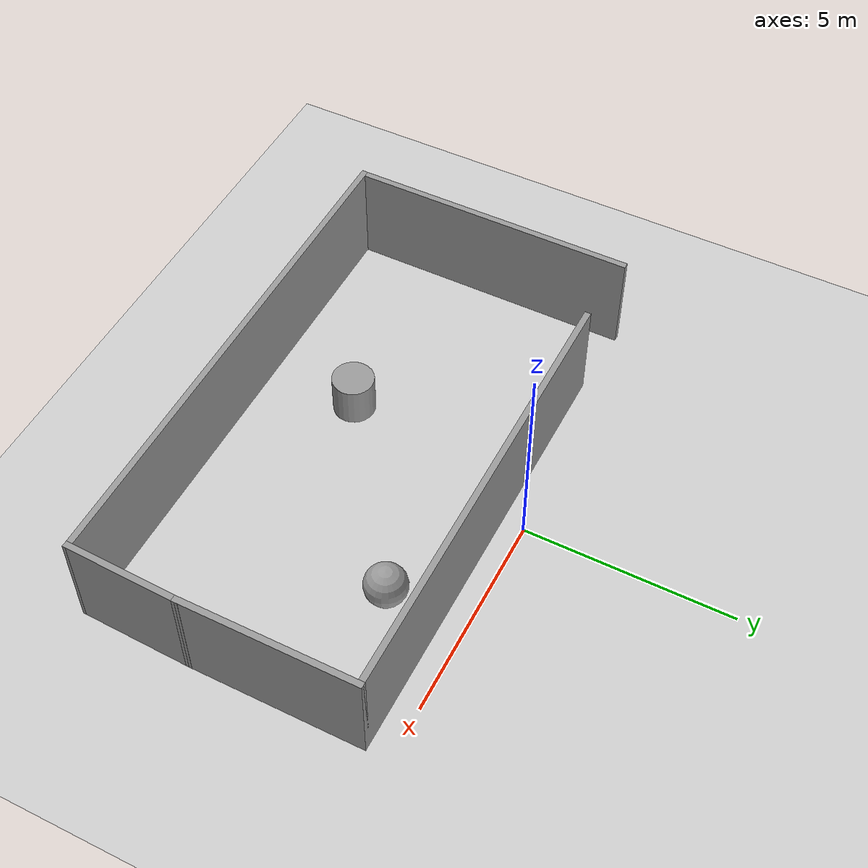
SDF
<sdf version="1.7">
 <world name="default">
  <light name="sun" type="directional">
   <pose>0 0 10 0 -0 0</pose>
   <diffuse>0.8 0.8 0.8 1</diffuse>
   <specular>0.2 0.2 0.2 1</specular>
   <attenuation>
    <range>1000</range>
    <constant>0.9</constant>
    <linear>0.01</linear>
    <quadratic>0.001</quadratic>
   </attenuation>
   <direction>-0.5 0.1 -0.9</direction>
   <spot><inner_angle>0</inner_angle><outer_angle>0</outer_angle><falloff>0</falloff></spot>
  </light>
  <model name="ground_plane">
   <static>1</static>
   <link name="link">
    <collision name="collision">
     <geometry><plane><normal>0 0 1</normal><size>100 100</size></plane></geometry>
     <surface>
      <contact><collide_bitmask>65535</collide_bitmask></contact>
      <friction><ode><mu>100</mu><mu2>50</mu2></ode></friction>
     </surface>
    </collision>
    <visual name="visual">
     <cast_shadows>0</cast_shadows>
     <geometry><plane><normal>0 0 1</normal><size>100 100</size></plane></geometry>
     <material>
      <script><uri>file://media/materials/scripts/gazebo.material</uri><name>Gazebo/Grey</name></script>
     </material>
    </visual>
   </link>
  </model>
  <gravity>0 0 -9.8</gravity>
  <magnetic_field>6e-06 2.3e-05 -4.2e-05</magnetic_field>
  <atmosphere type="adiabatic"/>
  <physics type="ode">
   <max_step_size>0.001</max_step_size>
   <real_time_factor>1</real_time_factor>
   <real_time_update_rate>1000</real_time_update_rate>
  </physics>
  <scene><ambient>0.4 0.4 0.4 1</ambient><background>0.7 0.7 0.7 1</background><shadows>1</shadows></scene>
  <spherical_coordinates>
   <surface_model>EARTH_WGS84</surface_model>
   <latitude_deg>0</latitude_deg>
   <longitude_deg>0</longitude_deg>
   <elevation>0</elevation>
   <heading_deg>0</heading_deg>
  </spherical_coordinates>
  <model name="map">
   <pose>0.013791 -3.70608 0 0 -0 0</pose>
   <link name="Wall_0">
    <collision name="Wall_0_Collision">
     <geometry><box><size>10.75 0.15 2.5</size></box></geometry>
     <pose>0 0 1.25 0 -0 0</pose>
    </collision>
    <visual name="Wall_0_Visual">
     <pose>0 0 1.25 0 -0 0</pose>
     <geometry><box><size>10.75 0.15 2.5</size></box></geometry>
     <material>
      <script><uri>file://media/materials/scripts/gazebo.material</uri><name>Gazebo/Grey</name></script>
      <ambient>1 1 1 1</ambient>
     </material>
     <meta><layer>0</layer></meta>
    </visual>
    <pose>0.916209 3.10608 0 0 -0 0</pose>
   </link>
   <link name="Wall_1">
    <collision name="Wall_1_Collision">
     <geometry><box><size>4.25 0.15 2.5</size></box></geometry>
     <pose>0 0 1.25 0 -0 0</pose>
    </collision>
    <visual name="Wall_1_Visual">
     <pose>0 0 1.25 0 -0 0</pose>
     <geometry><box><size>4.25 0.15 2.5</size></box></geometry>
     <material>
      <script><uri>file://media/materials/scripts/gazebo.material</uri><name>Gazebo/Grey</name></script>
      <ambient>1 1 1 1</ambient>
     </material>
     <meta><layer>0</layer></meta>
    </visual>
    <pose>6.21621 1.05608 0 0 -0 -1.5708</pose>
   </link>
   <link name="Wall_5">
    <collision name="Wall_5_Collision">
     <geometry><box><size>7 0.15 2.5</size></box></geometry>
     <pose>0 0 1.25 0 -0 0</pose>
    </collision>
    <visual name="Wall_5_Visual">
     <pose>0 0 1.25 0 -0 0</pose>
     <geometry><box><size>7 0.15 2.5</size></box></geometry>
     <material>
      <script><uri>file://media/materials/scripts/gazebo.material</uri><name>Gazebo/Grey</name></script>
      <ambient>1 1 1 1</ambient>
     </material>
     <meta><layer>0</layer></meta>
    </visual>
    <pose>-6.21858 -0.203709 0 0 -0 1.5708</pose>
   </link>
   <link name="Wall_7">
    <collision name="Wall_7_Collision">
     <geometry><box><size>12.5 0.15 2.5</size></box></geometry>
     <pose>0 0 1.25 0 -0 0</pose>
    </collision>
    <visual name="Wall_7_Visual">
     <pose>0 0 1.25 0 -0 0</pose>
     <geometry><box><size>12.5 0.15 2.5</size></box></geometry>
     <material>
      <script><uri>file://media/materials/scripts/gazebo.material</uri><name>Gazebo/Grey</name></script>
      <ambient>1 1 1 1</ambient>
     </material>
     <meta><layer>0</layer></meta>
    </visual>
    <pose>-0.043582 -3.62871 0 0 -0 0</pose>
   </link>
   <link name="Wall_8">
    <collision name="Wall_8_Collision">
     <geometry><box><size>2.78615 0.15 2.5</size></box></geometry>
     <pose>0 0 1.25 0 -0 0</pose>
    </collision>
    <visual name="Wall_8_Visual">
     <pose>0 0 1.25 0 -0 0</pose>
     <geometry><box><size>2.78615 0.15 2.5</size></box></geometry>
     <material>
      <script><uri>file://media/materials/scripts/gazebo.material</uri><name>Gazebo/Grey</name></script>
      <ambient>1 1 1 1</ambient>
     </material>
     <meta><layer>0</layer></meta>
    </visual>
    <pose>6.17381 -2.31131 0 0 -0 1.53863</pose>
   </link>
   <static>1</static>
  </model>
  <model name="unit_cylinder">
   <pose>-1.41716 -5.04746 0.499993 -3e-06 -4e-06 -0</pose>
   <link name="link">
    <inertial>
     <mass>1</mass>
     <inertia><ixx>0.145833</ixx><ixy>0</ixy><ixz>0</ixz><iyy>0.145833</iyy><iyz>0</iyz><izz>0.125</izz></inertia>
    </inertial>
    <collision name="collision">
     <geometry><cylinder><radius>0.5</radius><length>1</length></cylinder></geometry>
    </collision>
    <visual name="visual">
     <geometry><cylinder><radius>0.5</radius><length>1</length></cylinder></geometry>
     <material>
      <script><name>Gazebo/Grey</name><uri>file://media/materials/scripts/gazebo.material</uri></script>
     </material>
    </visual>
   </link>
  </model>
  <model name="unit_sphere">
   <pose>2.9332 -1.86599 0.5 0 -0 0</pose>
   <link name="link">
    <inertial>
     <mass>1</mass>
     <inertia><ixx>0.1</ixx><ixy>0</ixy><ixz>0</ixz><iyy>0.1</iyy><iyz>0</iyz><izz>0.1</izz></inertia>
    </inertial>
    <collision name="collision"><geometry><sphere><radius>0.5</radius></sphere></geometry></collision>
    <visual name="visual">
     <geometry><sphere><radius>0.5</radius></sphere></geometry>
     <material>
      <script><name>Gazebo/Grey</name><uri>file://media/materials/scripts/gazebo.material</uri></script>
     </material>
    </visual>
   </link>
  </model>
 </world>
</sdf>
